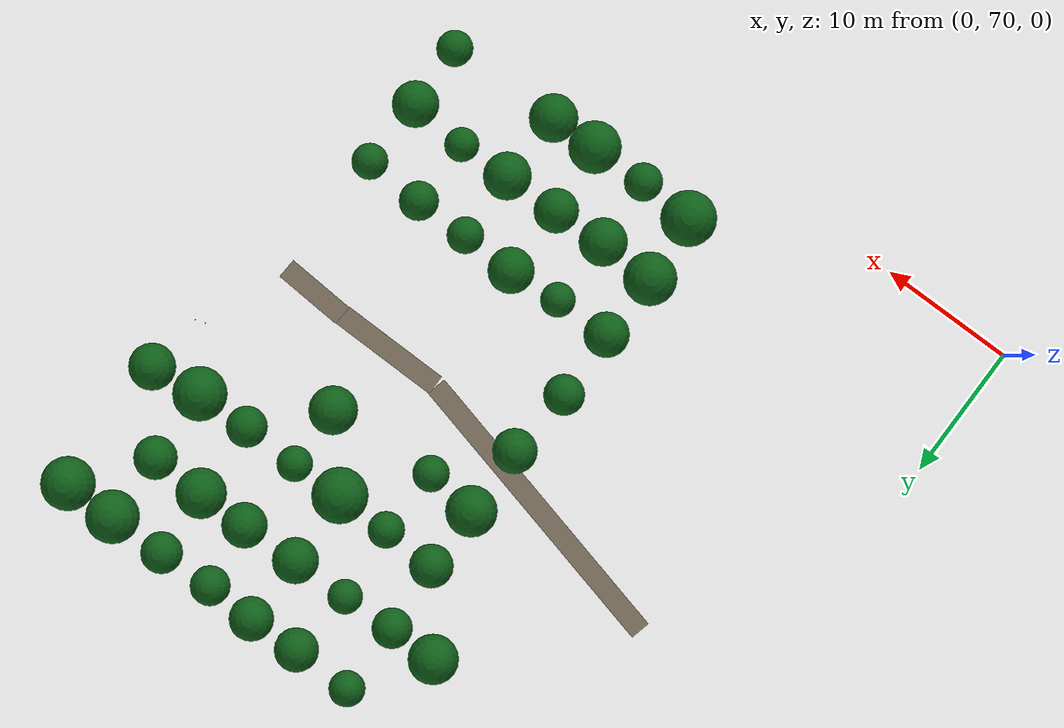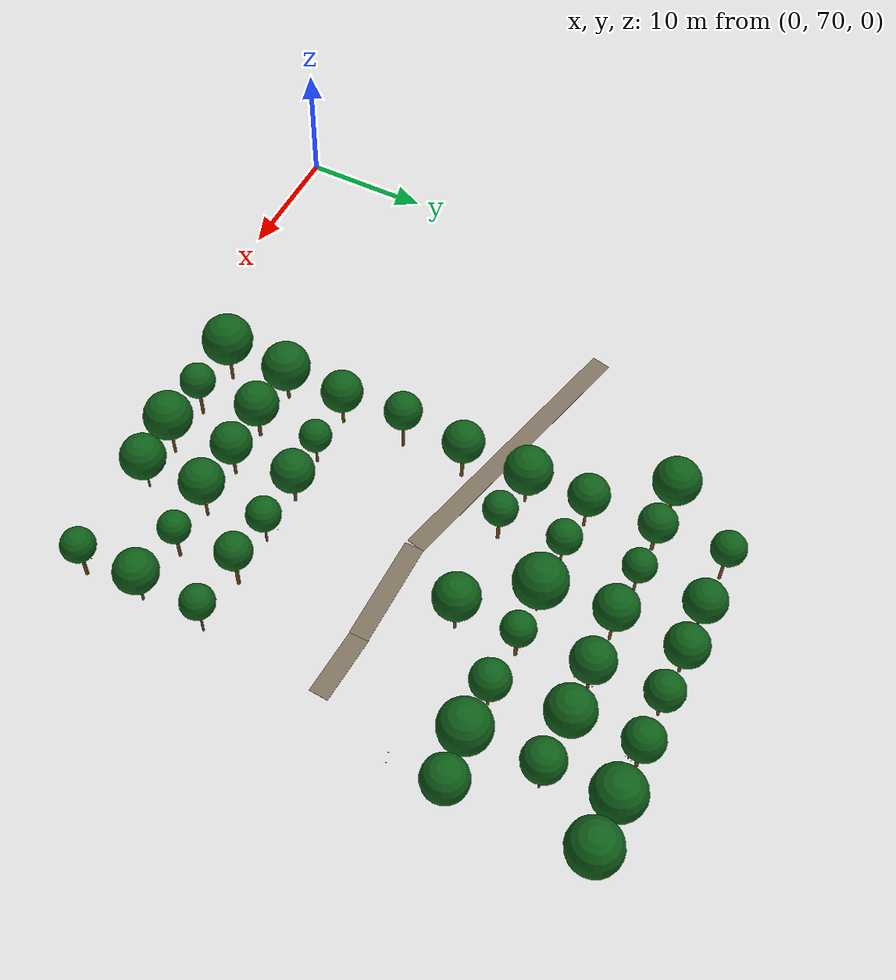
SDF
<sdf version="1.9">
 <world name="cheongsong_orchard">
  <model name="road_49">
   <static>true</static>
   <pose>42.1 95.3 0.02 0 0 3.0728</pose>
   <link name="link">
    <collision name="collision">
     <geometry><box><size>5.2 1.5 0.04</size></box></geometry>
     <surface><friction><ode><mu>0.9</mu><mu2>0.9</mu2></ode></friction></surface>
    </collision>
    <visual name="visual">
     <geometry><box><size>5.2 1.5 0.04</size></box></geometry>
     <material><ambient>0.4 0.35 0.28 1</ambient><diffuse>0.5 0.45 0.38 1</diffuse></material>
    </visual>
   </link>
  </model>
  <model name="road_50">
   <static>true</static>
   <pose>35.4 95.5 0.02 0 0 3.1268</pose>
   <link name="link">
    <collision name="collision">
     <geometry><box><size>8.3 1.5 0.04</size></box></geometry>
     <surface><friction><ode><mu>0.9</mu><mu2>0.9</mu2></ode></friction></surface>
    </collision>
    <visual name="visual">
     <geometry><box><size>8.3 1.5 0.04</size></box></geometry>
     <material><ambient>0.4 0.35 0.28 1</ambient><diffuse>0.5 0.45 0.38 1</diffuse></material>
    </visual>
   </link>
  </model>
  <model name="road_51">
   <static>true</static>
   <pose>20.2 98.3 0.02 0 0 2.9003</pose>
   <link name="link">
    <collision name="collision">
     <geometry><box><size>22.6 1.5 0.04</size></box></geometry>
     <surface><friction><ode><mu>0.9</mu><mu2>0.9</mu2></ode></friction></surface>
    </collision>
    <visual name="visual">
     <geometry><box><size>22.6 1.5 0.04</size></box></geometry>
     <material><ambient>0.4 0.35 0.28 1</ambient><diffuse>0.5 0.45 0.38 1</diffuse></material>
    </visual>
   </link>
  </model>
  <model name="apple_tree_2005">
   <static>true</static>
   <pose>23.87 75.83 0 0 0 0</pose>
   <link name="link">
    <collision name="trunk_col">
     <pose>0 0 1.38 0 0 0</pose>
     <geometry><cylinder><radius>0.125</radius><length>2.75</length></cylinder></geometry>
    </collision>
    <visual name="trunk_vis">
     <pose>0 0 1.38 0 0 0</pose>
     <geometry><cylinder><radius>0.125</radius><length>2.75</length></cylinder></geometry>
     <material><ambient>0.35 0.22 0.08 1</ambient><diffuse>0.45 0.30 0.12 1</diffuse></material>
    </visual>
    <collision name="canopy_col">
     <pose>0 0 4.72 0 0 0</pose>
     <geometry><sphere><radius>1.97</radius></sphere></geometry>
    </collision>
    <visual name="canopy_vis">
     <pose>0 0 4.72 0 0 0</pose>
     <geometry><sphere><radius>1.97</radius></sphere></geometry>
     <material><ambient>0.04 0.28 0.06 1</ambient><diffuse>0.06 0.38 0.10 1</diffuse></material>
    </visual>
   </link>
  </model>
  <model name="apple_tree_2006">
   <static>true</static>
   <pose>27.87 75.58 0 0 0 0</pose>
   <link name="link">
    <collision name="trunk_col">
     <pose>0 0 1.33 0 0 0</pose>
     <geometry><cylinder><radius>0.131</radius><length>2.67</length></cylinder></geometry>
    </collision>
    <visual name="trunk_vis">
     <pose>0 0 1.33 0 0 0</pose>
     <geometry><cylinder><radius>0.131</radius><length>2.67</length></cylinder></geometry>
     <material><ambient>0.35 0.22 0.08 1</ambient><diffuse>0.45 0.30 0.12 1</diffuse></material>
    </visual>
    <collision name="canopy_col">
     <pose>0 0 4.02 0 0 0</pose>
     <geometry><sphere><radius>1.36</radius></sphere></geometry>
    </collision>
    <visual name="canopy_vis">
     <pose>0 0 4.02 0 0 0</pose>
     <geometry><sphere><radius>1.36</radius></sphere></geometry>
     <material><ambient>0.04 0.28 0.06 1</ambient><diffuse>0.06 0.38 0.10 1</diffuse></material>
    </visual>
   </link>
  </model>
  <model name="apple_tree_2007">
   <static>true</static>
   <pose>31.99 75.68 0 0 0 0</pose>
   <link name="link">
    <collision name="trunk_col">
     <pose>0 0 1.36 0 0 0</pose>
     <geometry><cylinder><radius>0.110</radius><length>2.72</length></cylinder></geometry>
    </collision>
    <visual name="trunk_vis">
     <pose>0 0 1.36 0 0 0</pose>
     <geometry><cylinder><radius>0.110</radius><length>2.72</length></cylinder></geometry>
     <material><ambient>0.35 0.22 0.08 1</ambient><diffuse>0.45 0.30 0.12 1</diffuse></material>
    </visual>
    <collision name="canopy_col">
     <pose>0 0 4.58 0 0 0</pose>
     <geometry><sphere><radius>1.85</radius></sphere></geometry>
    </collision>
    <visual name="canopy_vis">
     <pose>0 0 4.58 0 0 0</pose>
     <geometry><sphere><radius>1.85</radius></sphere></geometry>
     <material><ambient>0.04 0.28 0.06 1</ambient><diffuse>0.06 0.38 0.10 1</diffuse></material>
    </visual>
   </link>
  </model>
  <model name="apple_tree_2008">
   <static>true</static>
   <pose>35.52 75.67 0 0 0 0</pose>
   <link name="link">
    <collision name="trunk_col">
     <pose>0 0 1.05 0 0 0</pose>
     <geometry><cylinder><radius>0.082</radius><length>2.09</length></cylinder></geometry>
    </collision>
    <visual name="trunk_vis">
     <pose>0 0 1.05 0 0 0</pose>
     <geometry><cylinder><radius>0.082</radius><length>2.09</length></cylinder></geometry>
     <material><ambient>0.35 0.22 0.08 1</ambient><diffuse>0.45 0.30 0.12 1</diffuse></material>
    </visual>
    <collision name="canopy_col">
     <pose>0 0 3.81 0 0 0</pose>
     <geometry><sphere><radius>1.72</radius></sphere></geometry>
    </collision>
    <visual name="canopy_vis">
     <pose>0 0 3.81 0 0 0</pose>
     <geometry><sphere><radius>1.72</radius></sphere></geometry>
     <material><ambient>0.04 0.28 0.06 1</ambient><diffuse>0.06 0.38 0.10 1</diffuse></material>
    </visual>
   </link>
  </model>
  <model name="apple_tree_2010">
   <static>true</static>
   <pose>43.89 75.84 0 0 0 0</pose>
   <link name="link">
    <collision name="trunk_col">
     <pose>0 0 1.26 0 0 0</pose>
     <geometry><cylinder><radius>0.133</radius><length>2.53</length></cylinder></geometry>
    </collision>
    <visual name="trunk_vis">
     <pose>0 0 1.26 0 0 0</pose>
     <geometry><cylinder><radius>0.133</radius><length>2.53</length></cylinder></geometry>
     <material><ambient>0.35 0.22 0.08 1</ambient><diffuse>0.45 0.30 0.12 1</diffuse></material>
    </visual>
    <collision name="canopy_col">
     <pose>0 0 3.82 0 0 0</pose>
     <geometry><sphere><radius>1.29</radius></sphere></geometry>
    </collision>
    <visual name="canopy_vis">
     <pose>0 0 3.82 0 0 0</pose>
     <geometry><sphere><radius>1.29</radius></sphere></geometry>
     <material><ambient>0.04 0.28 0.06 1</ambient><diffuse>0.06 0.38 0.10 1</diffuse></material>
    </visual>
   </link>
  </model>
  <model name="apple_tree_2060">
   <static>true</static>
   <pose>23.53 80.70 0 0 0 0</pose>
   <link name="link">
    <collision name="trunk_col">
     <pose>0 0 0.99 0 0 0</pose>
     <geometry><cylinder><radius>0.129</radius><length>1.98</length></cylinder></geometry>
    </collision>
    <visual name="trunk_vis">
     <pose>0 0 0.99 0 0 0</pose>
     <geometry><cylinder><radius>0.129</radius><length>1.98</length></cylinder></geometry>
     <material><ambient>0.35 0.22 0.08 1</ambient><diffuse>0.45 0.30 0.12 1</diffuse></material>
    </visual>
    <collision name="canopy_col">
     <pose>0 0 3.87 0 0 0</pose>
     <geometry><sphere><radius>1.89</radius></sphere></geometry>
    </collision>
    <visual name="canopy_vis">
     <pose>0 0 3.87 0 0 0</pose>
     <geometry><sphere><radius>1.89</radius></sphere></geometry>
     <material><ambient>0.04 0.28 0.06 1</ambient><diffuse>0.06 0.38 0.10 1</diffuse></material>
    </visual>
   </link>
  </model>
  <model name="apple_tree_2061">
   <static>true</static>
   <pose>27.66 80.57 0 0 0 0</pose>
   <link name="link">
    <collision name="trunk_col">
     <pose>0 0 1.09 0 0 0</pose>
     <geometry><cylinder><radius>0.138</radius><length>2.19</length></cylinder></geometry>
    </collision>
    <visual name="trunk_vis">
     <pose>0 0 1.09 0 0 0</pose>
     <geometry><cylinder><radius>0.138</radius><length>2.19</length></cylinder></geometry>
     <material><ambient>0.35 0.22 0.08 1</ambient><diffuse>0.45 0.30 0.12 1</diffuse></material>
    </visual>
    <collision name="canopy_col">
     <pose>0 0 3.89 0 0 0</pose>
     <geometry><sphere><radius>1.71</radius></sphere></geometry>
    </collision>
    <visual name="canopy_vis">
     <pose>0 0 3.89 0 0 0</pose>
     <geometry><sphere><radius>1.71</radius></sphere></geometry>
     <material><ambient>0.04 0.28 0.06 1</ambient><diffuse>0.06 0.38 0.10 1</diffuse></material>
    </visual>
   </link>
  </model>
  <model name="apple_tree_2062">
   <static>true</static>
   <pose>31.57 80.74 0 0 0 0</pose>
   <link name="link">
    <collision name="trunk_col">
     <pose>0 0 1.14 0 0 0</pose>
     <geometry><cylinder><radius>0.122</radius><length>2.28</length></cylinder></geometry>
    </collision>
    <visual name="trunk_vis">
     <pose>0 0 1.14 0 0 0</pose>
     <geometry><cylinder><radius>0.122</radius><length>2.28</length></cylinder></geometry>
     <material><ambient>0.35 0.22 0.08 1</ambient><diffuse>0.45 0.30 0.12 1</diffuse></material>
    </visual>
    <collision name="canopy_col">
     <pose>0 0 3.85 0 0 0</pose>
     <geometry><sphere><radius>1.58</radius></sphere></geometry>
    </collision>
    <visual name="canopy_vis">
     <pose>0 0 3.85 0 0 0</pose>
     <geometry><sphere><radius>1.58</radius></sphere></geometry>
     <material><ambient>0.04 0.28 0.06 1</ambient><diffuse>0.06 0.38 0.10 1</diffuse></material>
    </visual>
   </link>
  </model>
  <model name="apple_tree_2063">
   <static>true</static>
   <pose>35.70 80.84 0 0 0 0</pose>
   <link name="link">
    <collision name="trunk_col">
     <pose>0 0 1.32 0 0 0</pose>
     <geometry><cylinder><radius>0.112</radius><length>2.64</length></cylinder></geometry>
    </collision>
    <visual name="trunk_vis">
     <pose>0 0 1.32 0 0 0</pose>
     <geometry><cylinder><radius>0.112</radius><length>2.64</length></cylinder></geometry>
     <material><ambient>0.35 0.22 0.08 1</ambient><diffuse>0.45 0.30 0.12 1</diffuse></material>
    </visual>
    <collision name="canopy_col">
     <pose>0 0 4.33 0 0 0</pose>
     <geometry><sphere><radius>1.69</radius></sphere></geometry>
    </collision>
    <visual name="canopy_vis">
     <pose>0 0 4.33 0 0 0</pose>
     <geometry><sphere><radius>1.69</radius></sphere></geometry>
     <material><ambient>0.04 0.28 0.06 1</ambient><diffuse>0.06 0.38 0.10 1</diffuse></material>
    </visual>
   </link>
  </model>
  <model name="apple_tree_2064">
   <static>true</static>
   <pose>39.57 80.92 0 0 0 0</pose>
   <link name="link">
    <collision name="trunk_col">
     <pose>0 0 1.26 0 0 0</pose>
     <geometry><cylinder><radius>0.127</radius><length>2.53</length></cylinder></geometry>
    </collision>
    <visual name="trunk_vis">
     <pose>0 0 1.26 0 0 0</pose>
     <geometry><cylinder><radius>0.127</radius><length>2.53</length></cylinder></geometry>
     <material><ambient>0.35 0.22 0.08 1</ambient><diffuse>0.45 0.30 0.12 1</diffuse></material>
    </visual>
    <collision name="canopy_col">
     <pose>0 0 3.75 0 0 0</pose>
     <geometry><sphere><radius>1.22</radius></sphere></geometry>
    </collision>
    <visual name="canopy_vis">
     <pose>0 0 3.75 0 0 0</pose>
     <geometry><sphere><radius>1.22</radius></sphere></geometry>
     <material><ambient>0.04 0.28 0.06 1</ambient><diffuse>0.06 0.38 0.10 1</diffuse></material>
    </visual>
   </link>
  </model>
  <model name="apple_tree_2065">
   <static>true</static>
   <pose>43.81 80.55 0 0 0 0</pose>
   <link name="link">
    <collision name="trunk_col">
     <pose>0 0 1.06 0 0 0</pose>
     <geometry><cylinder><radius>0.099</radius><length>2.13</length></cylinder></geometry>
    </collision>
    <visual name="trunk_vis">
     <pose>0 0 1.06 0 0 0</pose>
     <geometry><cylinder><radius>0.099</radius><length>2.13</length></cylinder></geometry>
     <material><ambient>0.35 0.22 0.08 1</ambient><diffuse>0.45 0.30 0.12 1</diffuse></material>
    </visual>
    <collision name="canopy_col">
     <pose>0 0 3.78 0 0 0</pose>
     <geometry><sphere><radius>1.65</radius></sphere></geometry>
    </collision>
    <visual name="canopy_vis">
     <pose>0 0 3.78 0 0 0</pose>
     <geometry><sphere><radius>1.65</radius></sphere></geometry>
     <material><ambient>0.04 0.28 0.06 1</ambient><diffuse>0.06 0.38 0.10 1</diffuse></material>
    </visual>
   </link>
  </model>
  <model name="apple_tree_2117">
   <static>true</static>
   <pose>23.67 85.61 0 0 0 0</pose>
   <link name="link">
    <collision name="trunk_col">
     <pose>0 0 1.08 0 0 0</pose>
     <geometry><cylinder><radius>0.121</radius><length>2.16</length></cylinder></geometry>
    </collision>
    <visual name="trunk_vis">
     <pose>0 0 1.08 0 0 0</pose>
     <geometry><cylinder><radius>0.121</radius><length>2.16</length></cylinder></geometry>
     <material><ambient>0.35 0.22 0.08 1</ambient><diffuse>0.45 0.30 0.12 1</diffuse></material>
    </visual>
    <collision name="canopy_col">
     <pose>0 0 3.78 0 0 0</pose>
     <geometry><sphere><radius>1.61</radius></sphere></geometry>
    </collision>
    <visual name="canopy_vis">
     <pose>0 0 3.78 0 0 0</pose>
     <geometry><sphere><radius>1.61</radius></sphere></geometry>
     <material><ambient>0.04 0.28 0.06 1</ambient><diffuse>0.06 0.38 0.10 1</diffuse></material>
    </visual>
   </link>
  </model>
  <model name="apple_tree_2118">
   <static>true</static>
   <pose>27.83 85.63 0 0 0 0</pose>
   <link name="link">
    <collision name="trunk_col">
     <pose>0 0 0.99 0 0 0</pose>
     <geometry><cylinder><radius>0.107</radius><length>1.99</length></cylinder></geometry>
    </collision>
    <visual name="trunk_vis">
     <pose>0 0 0.99 0 0 0</pose>
     <geometry><cylinder><radius>0.107</radius><length>1.99</length></cylinder></geometry>
     <material><ambient>0.35 0.22 0.08 1</ambient><diffuse>0.45 0.30 0.12 1</diffuse></material>
    </visual>
    <collision name="canopy_col">
     <pose>0 0 3.22 0 0 0</pose>
     <geometry><sphere><radius>1.24</radius></sphere></geometry>
    </collision>
    <visual name="canopy_vis">
     <pose>0 0 3.22 0 0 0</pose>
     <geometry><sphere><radius>1.24</radius></sphere></geometry>
     <material><ambient>0.04 0.28 0.06 1</ambient><diffuse>0.06 0.38 0.10 1</diffuse></material>
    </visual>
   </link>
  </model>
  <model name="apple_tree_2119">
   <static>true</static>
   <pose>31.65 85.93 0 0 0 0</pose>
   <link name="link">
    <collision name="trunk_col">
     <pose>0 0 1.05 0 0 0</pose>
     <geometry><cylinder><radius>0.123</radius><length>2.10</length></cylinder></geometry>
    </collision>
    <visual name="trunk_vis">
     <pose>0 0 1.05 0 0 0</pose>
     <geometry><cylinder><radius>0.123</radius><length>2.10</length></cylinder></geometry>
     <material><ambient>0.35 0.22 0.08 1</ambient><diffuse>0.45 0.30 0.12 1</diffuse></material>
    </visual>
    <collision name="canopy_col">
     <pose>0 0 3.75 0 0 0</pose>
     <geometry><sphere><radius>1.64</radius></sphere></geometry>
    </collision>
    <visual name="canopy_vis">
     <pose>0 0 3.75 0 0 0</pose>
     <geometry><sphere><radius>1.64</radius></sphere></geometry>
     <material><ambient>0.04 0.28 0.06 1</ambient><diffuse>0.06 0.38 0.10 1</diffuse></material>
    </visual>
   </link>
  </model>
  <model name="apple_tree_2120">
   <static>true</static>
   <pose>35.66 85.83 0 0 0 0</pose>
   <link name="link">
    <collision name="trunk_col">
     <pose>0 0 1.10 0 0 0</pose>
     <geometry><cylinder><radius>0.090</radius><length>2.20</length></cylinder></geometry>
    </collision>
    <visual name="trunk_vis">
     <pose>0 0 1.10 0 0 0</pose>
     <geometry><cylinder><radius>0.090</radius><length>2.20</length></cylinder></geometry>
     <material><ambient>0.35 0.22 0.08 1</ambient><diffuse>0.45 0.30 0.12 1</diffuse></material>
    </visual>
    <collision name="canopy_col">
     <pose>0 0 3.51 0 0 0</pose>
     <geometry><sphere><radius>1.31</radius></sphere></geometry>
    </collision>
    <visual name="canopy_vis">
     <pose>0 0 3.51 0 0 0</pose>
     <geometry><sphere><radius>1.31</radius></sphere></geometry>
     <material><ambient>0.04 0.28 0.06 1</ambient><diffuse>0.06 0.38 0.10 1</diffuse></material>
    </visual>
   </link>
  </model>
  <model name="apple_tree_2121">
   <static>true</static>
   <pose>39.62 85.84 0 0 0 0</pose>
   <link name="link">
    <collision name="trunk_col">
     <pose>0 0 1.43 0 0 0</pose>
     <geometry><cylinder><radius>0.143</radius><length>2.87</length></cylinder></geometry>
    </collision>
    <visual name="trunk_vis">
     <pose>0 0 1.43 0 0 0</pose>
     <geometry><cylinder><radius>0.143</radius><length>2.87</length></cylinder></geometry>
     <material><ambient>0.35 0.22 0.08 1</ambient><diffuse>0.45 0.30 0.12 1</diffuse></material>
    </visual>
    <collision name="canopy_col">
     <pose>0 0 4.26 0 0 0</pose>
     <geometry><sphere><radius>1.39</radius></sphere></geometry>
    </collision>
    <visual name="canopy_vis">
     <pose>0 0 4.26 0 0 0</pose>
     <geometry><sphere><radius>1.39</radius></sphere></geometry>
     <material><ambient>0.04 0.28 0.06 1</ambient><diffuse>0.06 0.38 0.10 1</diffuse></material>
    </visual>
   </link>
  </model>
  <model name="apple_tree_2122">
   <static>true</static>
   <pose>44.00 85.63 0 0 0 0</pose>
   <link name="link">
    <collision name="trunk_col">
     <pose>0 0 1.32 0 0 0</pose>
     <geometry><cylinder><radius>0.085</radius><length>2.64</length></cylinder></geometry>
    </collision>
    <visual name="trunk_vis">
     <pose>0 0 1.32 0 0 0</pose>
     <geometry><cylinder><radius>0.085</radius><length>2.64</length></cylinder></geometry>
     <material><ambient>0.35 0.22 0.08 1</ambient><diffuse>0.45 0.30 0.12 1</diffuse></material>
    </visual>
    <collision name="canopy_col">
     <pose>0 0 3.93 0 0 0</pose>
     <geometry><sphere><radius>1.28</radius></sphere></geometry>
    </collision>
    <visual name="canopy_vis">
     <pose>0 0 3.93 0 0 0</pose>
     <geometry><sphere><radius>1.28</radius></sphere></geometry>
     <material><ambient>0.04 0.28 0.06 1</ambient><diffuse>0.06 0.38 0.10 1</diffuse></material>
    </visual>
   </link>
  </model>
  <model name="apple_tree_2173">
   <static>true</static>
   <pose>23.59 90.71 0 0 0 0</pose>
   <link name="link">
    <collision name="trunk_col">
     <pose>0 0 1.45 0 0 0</pose>
     <geometry><cylinder><radius>0.110</radius><length>2.89</length></cylinder></geometry>
    </collision>
    <visual name="trunk_vis">
     <pose>0 0 1.45 0 0 0</pose>
     <geometry><cylinder><radius>0.110</radius><length>2.89</length></cylinder></geometry>
     <material><ambient>0.35 0.22 0.08 1</ambient><diffuse>0.45 0.30 0.12 1</diffuse></material>
    </visual>
    <collision name="canopy_col">
     <pose>0 0 4.34 0 0 0</pose>
     <geometry><sphere><radius>1.45</radius></sphere></geometry>
    </collision>
    <visual name="canopy_vis">
     <pose>0 0 4.34 0 0 0</pose>
     <geometry><sphere><radius>1.45</radius></sphere></geometry>
     <material><ambient>0.04 0.28 0.06 1</ambient><diffuse>0.06 0.38 0.10 1</diffuse></material>
    </visual>
   </link>
  </model>
  <model name="apple_tree_2212">
   <static>true</static>
   <pose>24.04 95.86 0 0 0 0</pose>
   <link name="link">
    <collision name="trunk_col">
     <pose>0 0 1.33 0 0 0</pose>
     <geometry><cylinder><radius>0.139</radius><length>2.66</length></cylinder></geometry>
    </collision>
    <visual name="trunk_vis">
     <pose>0 0 1.33 0 0 0</pose>
     <geometry><cylinder><radius>0.139</radius><length>2.66</length></cylinder></geometry>
     <material><ambient>0.35 0.22 0.08 1</ambient><diffuse>0.45 0.30 0.12 1</diffuse></material>
    </visual>
    <collision name="canopy_col">
     <pose>0 0 4.26 0 0 0</pose>
     <geometry><sphere><radius>1.59</radius></sphere></geometry>
    </collision>
    <visual name="canopy_vis">
     <pose>0 0 4.26 0 0 0</pose>
     <geometry><sphere><radius>1.59</radius></sphere></geometry>
     <material><ambient>0.04 0.28 0.06 1</ambient><diffuse>0.06 0.38 0.10 1</diffuse></material>
    </visual>
   </link>
  </model>
  <model name="apple_tree_2247">
   <static>true</static>
   <pose>23.99 101.01 0 0 0 0</pose>
   <link name="link">
    <collision name="trunk_col">
     <pose>0 0 1.07 0 0 0</pose>
     <geometry><cylinder><radius>0.101</radius><length>2.14</length></cylinder></geometry>
    </collision>
    <visual name="trunk_vis">
     <pose>0 0 1.07 0 0 0</pose>
     <geometry><cylinder><radius>0.101</radius><length>2.14</length></cylinder></geometry>
     <material><ambient>0.35 0.22 0.08 1</ambient><diffuse>0.45 0.30 0.12 1</diffuse></material>
    </visual>
    <collision name="canopy_col">
     <pose>0 0 3.96 0 0 0</pose>
     <geometry><sphere><radius>1.82</radius></sphere></geometry>
    </collision>
    <visual name="canopy_vis">
     <pose>0 0 3.96 0 0 0</pose>
     <geometry><sphere><radius>1.82</radius></sphere></geometry>
     <material><ambient>0.04 0.28 0.06 1</ambient><diffuse>0.06 0.38 0.10 1</diffuse></material>
    </visual>
   </link>
  </model>
  <model name="apple_tree_2248">
   <static>true</static>
   <pose>27.79 100.57 0 0 0 0</pose>
   <link name="link">
    <collision name="trunk_col">
     <pose>0 0 1.26 0 0 0</pose>
     <geometry><cylinder><radius>0.136</radius><length>2.52</length></cylinder></geometry>
    </collision>
    <visual name="trunk_vis">
     <pose>0 0 1.26 0 0 0</pose>
     <geometry><cylinder><radius>0.136</radius><length>2.52</length></cylinder></geometry>
     <material><ambient>0.35 0.22 0.08 1</ambient><diffuse>0.45 0.30 0.12 1</diffuse></material>
    </visual>
    <collision name="canopy_col">
     <pose>0 0 3.82 0 0 0</pose>
     <geometry><sphere><radius>1.30</radius></sphere></geometry>
    </collision>
    <visual name="canopy_vis">
     <pose>0 0 3.82 0 0 0</pose>
     <geometry><sphere><radius>1.30</radius></sphere></geometry>
     <material><ambient>0.04 0.28 0.06 1</ambient><diffuse>0.06 0.38 0.10 1</diffuse></material>
    </visual>
   </link>
  </model>
  <model name="apple_tree_2249">
   <static>true</static>
   <pose>35.83 101.02 0 0 0 0</pose>
   <link name="link">
    <collision name="trunk_col">
     <pose>0 0 1.25 0 0 0</pose>
     <geometry><cylinder><radius>0.108</radius><length>2.50</length></cylinder></geometry>
    </collision>
    <visual name="trunk_vis">
     <pose>0 0 1.25 0 0 0</pose>
     <geometry><cylinder><radius>0.108</radius><length>2.50</length></cylinder></geometry>
     <material><ambient>0.35 0.22 0.08 1</ambient><diffuse>0.45 0.30 0.12 1</diffuse></material>
    </visual>
    <collision name="canopy_col">
     <pose>0 0 4.22 0 0 0</pose>
     <geometry><sphere><radius>1.72</radius></sphere></geometry>
    </collision>
    <visual name="canopy_vis">
     <pose>0 0 4.22 0 0 0</pose>
     <geometry><sphere><radius>1.72</radius></sphere></geometry>
     <material><ambient>0.04 0.28 0.06 1</ambient><diffuse>0.06 0.38 0.10 1</diffuse></material>
    </visual>
   </link>
  </model>
  <model name="apple_tree_2293">
   <static>true</static>
   <pose>23.98 105.71 0 0 0 0</pose>
   <link name="link">
    <collision name="trunk_col">
     <pose>0 0 1.22 0 0 0</pose>
     <geometry><cylinder><radius>0.108</radius><length>2.43</length></cylinder></geometry>
    </collision>
    <visual name="trunk_vis">
     <pose>0 0 1.22 0 0 0</pose>
     <geometry><cylinder><radius>0.108</radius><length>2.43</length></cylinder></geometry>
     <material><ambient>0.35 0.22 0.08 1</ambient><diffuse>0.45 0.30 0.12 1</diffuse></material>
    </visual>
    <collision name="canopy_col">
     <pose>0 0 3.98 0 0 0</pose>
     <geometry><sphere><radius>1.55</radius></sphere></geometry>
    </collision>
    <visual name="canopy_vis">
     <pose>0 0 3.98 0 0 0</pose>
     <geometry><sphere><radius>1.55</radius></sphere></geometry>
     <material><ambient>0.04 0.28 0.06 1</ambient><diffuse>0.06 0.38 0.10 1</diffuse></material>
    </visual>
   </link>
  </model>
  <model name="apple_tree_2294">
   <static>true</static>
   <pose>27.98 105.54 0 0 0 0</pose>
   <link name="link">
    <collision name="trunk_col">
     <pose>0 0 1.31 0 0 0</pose>
     <geometry><cylinder><radius>0.088</radius><length>2.63</length></cylinder></geometry>
    </collision>
    <visual name="trunk_vis">
     <pose>0 0 1.31 0 0 0</pose>
     <geometry><cylinder><radius>0.088</radius><length>2.63</length></cylinder></geometry>
     <material><ambient>0.35 0.22 0.08 1</ambient><diffuse>0.45 0.30 0.12 1</diffuse></material>
    </visual>
    <collision name="canopy_col">
     <pose>0 0 3.93 0 0 0</pose>
     <geometry><sphere><radius>1.30</radius></sphere></geometry>
    </collision>
    <visual name="canopy_vis">
     <pose>0 0 3.93 0 0 0</pose>
     <geometry><sphere><radius>1.30</radius></sphere></geometry>
     <material><ambient>0.04 0.28 0.06 1</ambient><diffuse>0.06 0.38 0.10 1</diffuse></material>
    </visual>
   </link>
  </model>
  <model name="apple_tree_2295">
   <static>true</static>
   <pose>31.98 105.52 0 0 0 0</pose>
   <link name="link">
    <collision name="trunk_col">
     <pose>0 0 1.00 0 0 0</pose>
     <geometry><cylinder><radius>0.094</radius><length>1.99</length></cylinder></geometry>
    </collision>
    <visual name="trunk_vis">
     <pose>0 0 1.00 0 0 0</pose>
     <geometry><cylinder><radius>0.094</radius><length>1.99</length></cylinder></geometry>
     <material><ambient>0.35 0.22 0.08 1</ambient><diffuse>0.45 0.30 0.12 1</diffuse></material>
    </visual>
    <collision name="canopy_col">
     <pose>0 0 3.98 0 0 0</pose>
     <geometry><sphere><radius>1.99</radius></sphere></geometry>
    </collision>
    <visual name="canopy_vis">
     <pose>0 0 3.98 0 0 0</pose>
     <geometry><sphere><radius>1.99</radius></sphere></geometry>
     <material><ambient>0.04 0.28 0.06 1</ambient><diffuse>0.06 0.38 0.10 1</diffuse></material>
    </visual>
   </link>
  </model>
  <model name="apple_tree_2296">
   <static>true</static>
   <pose>35.82 105.63 0 0 0 0</pose>
   <link name="link">
    <collision name="trunk_col">
     <pose>0 0 1.17 0 0 0</pose>
     <geometry><cylinder><radius>0.142</radius><length>2.33</length></cylinder></geometry>
    </collision>
    <visual name="trunk_vis">
     <pose>0 0 1.17 0 0 0</pose>
     <geometry><cylinder><radius>0.142</radius><length>2.33</length></cylinder></geometry>
     <material><ambient>0.35 0.22 0.08 1</ambient><diffuse>0.45 0.30 0.12 1</diffuse></material>
    </visual>
    <collision name="canopy_col">
     <pose>0 0 3.60 0 0 0</pose>
     <geometry><sphere><radius>1.27</radius></sphere></geometry>
    </collision>
    <visual name="canopy_vis">
     <pose>0 0 3.60 0 0 0</pose>
     <geometry><sphere><radius>1.27</radius></sphere></geometry>
     <material><ambient>0.04 0.28 0.06 1</ambient><diffuse>0.06 0.38 0.10 1</diffuse></material>
    </visual>
   </link>
  </model>
  <model name="apple_tree_2297">
   <static>true</static>
   <pose>40.03 105.53 0 0 0 0</pose>
   <link name="link">
    <collision name="trunk_col">
     <pose>0 0 1.05 0 0 0</pose>
     <geometry><cylinder><radius>0.112</radius><length>2.10</length></cylinder></geometry>
    </collision>
    <visual name="trunk_vis">
     <pose>0 0 1.05 0 0 0</pose>
     <geometry><cylinder><radius>0.112</radius><length>2.10</length></cylinder></geometry>
     <material><ambient>0.35 0.22 0.08 1</ambient><diffuse>0.45 0.30 0.12 1</diffuse></material>
    </visual>
    <collision name="canopy_col">
     <pose>0 0 3.56 0 0 0</pose>
     <geometry><sphere><radius>1.46</radius></sphere></geometry>
    </collision>
    <visual name="canopy_vis">
     <pose>0 0 3.56 0 0 0</pose>
     <geometry><sphere><radius>1.46</radius></sphere></geometry>
     <material><ambient>0.04 0.28 0.06 1</ambient><diffuse>0.06 0.38 0.10 1</diffuse></material>
    </visual>
   </link>
  </model>
  <model name="apple_tree_2298">
   <static>true</static>
   <pose>43.96 105.57 0 0 0 0</pose>
   <link name="link">
    <collision name="trunk_col">
     <pose>0 0 1.06 0 0 0</pose>
     <geometry><cylinder><radius>0.095</radius><length>2.12</length></cylinder></geometry>
    </collision>
    <visual name="trunk_vis">
     <pose>0 0 1.06 0 0 0</pose>
     <geometry><cylinder><radius>0.095</radius><length>2.12</length></cylinder></geometry>
     <material><ambient>0.35 0.22 0.08 1</ambient><diffuse>0.45 0.30 0.12 1</diffuse></material>
    </visual>
    <collision name="canopy_col">
     <pose>0 0 4.04 0 0 0</pose>
     <geometry><sphere><radius>1.92</radius></sphere></geometry>
    </collision>
    <visual name="canopy_vis">
     <pose>0 0 4.04 0 0 0</pose>
     <geometry><sphere><radius>1.92</radius></sphere></geometry>
     <material><ambient>0.04 0.28 0.06 1</ambient><diffuse>0.06 0.38 0.10 1</diffuse></material>
    </visual>
   </link>
  </model>
  <model name="apple_tree_2299">
   <static>true</static>
   <pose>47.72 106.00 0 0 0 0</pose>
   <link name="link">
    <collision name="trunk_col">
     <pose>0 0 1.22 0 0 0</pose>
     <geometry><cylinder><radius>0.093</radius><length>2.45</length></cylinder></geometry>
    </collision>
    <visual name="trunk_vis">
     <pose>0 0 1.22 0 0 0</pose>
     <geometry><cylinder><radius>0.093</radius><length>2.45</length></cylinder></geometry>
     <material><ambient>0.35 0.22 0.08 1</ambient><diffuse>0.45 0.30 0.12 1</diffuse></material>
    </visual>
    <collision name="canopy_col">
     <pose>0 0 4.10 0 0 0</pose>
     <geometry><sphere><radius>1.66</radius></sphere></geometry>
    </collision>
    <visual name="canopy_vis">
     <pose>0 0 4.10 0 0 0</pose>
     <geometry><sphere><radius>1.66</radius></sphere></geometry>
     <material><ambient>0.04 0.28 0.06 1</ambient><diffuse>0.06 0.38 0.10 1</diffuse></material>
    </visual>
   </link>
  </model>
  <model name="apple_tree_2336">
   <static>true</static>
   <pose>20.05 110.84 0 0 0 0</pose>
   <link name="link">
    <collision name="trunk_col">
     <pose>0 0 1.12 0 0 0</pose>
     <geometry><cylinder><radius>0.121</radius><length>2.25</length></cylinder></geometry>
    </collision>
    <visual name="trunk_vis">
     <pose>0 0 1.12 0 0 0</pose>
     <geometry><cylinder><radius>0.121</radius><length>2.25</length></cylinder></geometry>
     <material><ambient>0.35 0.22 0.08 1</ambient><diffuse>0.45 0.30 0.12 1</diffuse></material>
    </visual>
    <collision name="canopy_col">
     <pose>0 0 4.03 0 0 0</pose>
     <geometry><sphere><radius>1.78</radius></sphere></geometry>
    </collision>
    <visual name="canopy_vis">
     <pose>0 0 4.03 0 0 0</pose>
     <geometry><sphere><radius>1.78</radius></sphere></geometry>
     <material><ambient>0.04 0.28 0.06 1</ambient><diffuse>0.06 0.38 0.10 1</diffuse></material>
    </visual>
   </link>
  </model>
  <model name="apple_tree_2337">
   <static>true</static>
   <pose>23.61 110.86 0 0 0 0</pose>
   <link name="link">
    <collision name="trunk_col">
     <pose>0 0 1.00 0 0 0</pose>
     <geometry><cylinder><radius>0.140</radius><length>2.00</length></cylinder></geometry>
    </collision>
    <visual name="trunk_vis">
     <pose>0 0 1.00 0 0 0</pose>
     <geometry><cylinder><radius>0.140</radius><length>2.00</length></cylinder></geometry>
     <material><ambient>0.35 0.22 0.08 1</ambient><diffuse>0.45 0.30 0.12 1</diffuse></material>
    </visual>
    <collision name="canopy_col">
     <pose>0 0 3.43 0 0 0</pose>
     <geometry><sphere><radius>1.44</radius></sphere></geometry>
    </collision>
    <visual name="canopy_vis">
     <pose>0 0 3.43 0 0 0</pose>
     <geometry><sphere><radius>1.44</radius></sphere></geometry>
     <material><ambient>0.04 0.28 0.06 1</ambient><diffuse>0.06 0.38 0.10 1</diffuse></material>
    </visual>
   </link>
  </model>
  <model name="apple_tree_2338">
   <static>true</static>
   <pose>27.54 111.00 0 0 0 0</pose>
   <link name="link">
    <collision name="trunk_col">
     <pose>0 0 1.19 0 0 0</pose>
     <geometry><cylinder><radius>0.100</radius><length>2.37</length></cylinder></geometry>
    </collision>
    <visual name="trunk_vis">
     <pose>0 0 1.19 0 0 0</pose>
     <geometry><cylinder><radius>0.100</radius><length>2.37</length></cylinder></geometry>
     <material><ambient>0.35 0.22 0.08 1</ambient><diffuse>0.45 0.30 0.12 1</diffuse></material>
    </visual>
    <collision name="canopy_col">
     <pose>0 0 3.61 0 0 0</pose>
     <geometry><sphere><radius>1.24</radius></sphere></geometry>
    </collision>
    <visual name="canopy_vis">
     <pose>0 0 3.61 0 0 0</pose>
     <geometry><sphere><radius>1.24</radius></sphere></geometry>
     <material><ambient>0.04 0.28 0.06 1</ambient><diffuse>0.06 0.38 0.10 1</diffuse></material>
    </visual>
   </link>
  </model>
  <model name="apple_tree_2339">
   <static>true</static>
   <pose>31.78 110.92 0 0 0 0</pose>
   <link name="link">
    <collision name="trunk_col">
     <pose>0 0 1.38 0 0 0</pose>
     <geometry><cylinder><radius>0.108</radius><length>2.76</length></cylinder></geometry>
    </collision>
    <visual name="trunk_vis">
     <pose>0 0 1.38 0 0 0</pose>
     <geometry><cylinder><radius>0.108</radius><length>2.76</length></cylinder></geometry>
     <material><ambient>0.35 0.22 0.08 1</ambient><diffuse>0.45 0.30 0.12 1</diffuse></material>
    </visual>
    <collision name="canopy_col">
     <pose>0 0 4.39 0 0 0</pose>
     <geometry><sphere><radius>1.63</radius></sphere></geometry>
    </collision>
    <visual name="canopy_vis">
     <pose>0 0 4.39 0 0 0</pose>
     <geometry><sphere><radius>1.63</radius></sphere></geometry>
     <material><ambient>0.04 0.28 0.06 1</ambient><diffuse>0.06 0.38 0.10 1</diffuse></material>
    </visual>
   </link>
  </model>
  <model name="apple_tree_2340">
   <static>true</static>
   <pose>36.07 111.05 0 0 0 0</pose>
   <link name="link">
    <collision name="trunk_col">
     <pose>0 0 1.34 0 0 0</pose>
     <geometry><cylinder><radius>0.115</radius><length>2.67</length></cylinder></geometry>
    </collision>
    <visual name="trunk_vis">
     <pose>0 0 1.34 0 0 0</pose>
     <geometry><cylinder><radius>0.115</radius><length>2.67</length></cylinder></geometry>
     <material><ambient>0.35 0.22 0.08 1</ambient><diffuse>0.45 0.30 0.12 1</diffuse></material>
    </visual>
    <collision name="canopy_col">
     <pose>0 0 4.28 0 0 0</pose>
     <geometry><sphere><radius>1.61</radius></sphere></geometry>
    </collision>
    <visual name="canopy_vis">
     <pose>0 0 4.28 0 0 0</pose>
     <geometry><sphere><radius>1.61</radius></sphere></geometry>
     <material><ambient>0.04 0.28 0.06 1</ambient><diffuse>0.06 0.38 0.10 1</diffuse></material>
    </visual>
   </link>
  </model>
  <model name="apple_tree_2341">
   <static>true</static>
   <pose>39.82 111.09 0 0 0 0</pose>
   <link name="link">
    <collision name="trunk_col">
     <pose>0 0 1.06 0 0 0</pose>
     <geometry><cylinder><radius>0.118</radius><length>2.12</length></cylinder></geometry>
    </collision>
    <visual name="trunk_vis">
     <pose>0 0 1.06 0 0 0</pose>
     <geometry><cylinder><radius>0.118</radius><length>2.12</length></cylinder></geometry>
     <material><ambient>0.35 0.22 0.08 1</ambient><diffuse>0.45 0.30 0.12 1</diffuse></material>
    </visual>
    <collision name="canopy_col">
     <pose>0 0 3.90 0 0 0</pose>
     <geometry><sphere><radius>1.79</radius></sphere></geometry>
    </collision>
    <visual name="canopy_vis">
     <pose>0 0 3.90 0 0 0</pose>
     <geometry><sphere><radius>1.79</radius></sphere></geometry>
     <material><ambient>0.04 0.28 0.06 1</ambient><diffuse>0.06 0.38 0.10 1</diffuse></material>
    </visual>
   </link>
  </model>
  <model name="apple_tree_2342">
   <static>true</static>
   <pose>43.81 110.95 0 0 0 0</pose>
   <link name="link">
    <collision name="trunk_col">
     <pose>0 0 1.27 0 0 0</pose>
     <geometry><cylinder><radius>0.096</radius><length>2.54</length></cylinder></geometry>
    </collision>
    <visual name="trunk_vis">
     <pose>0 0 1.27 0 0 0</pose>
     <geometry><cylinder><radius>0.096</radius><length>2.54</length></cylinder></geometry>
     <material><ambient>0.35 0.22 0.08 1</ambient><diffuse>0.45 0.30 0.12 1</diffuse></material>
    </visual>
    <collision name="canopy_col">
     <pose>0 0 4.08 0 0 0</pose>
     <geometry><sphere><radius>1.54</radius></sphere></geometry>
    </collision>
    <visual name="canopy_vis">
     <pose>0 0 4.08 0 0 0</pose>
     <geometry><sphere><radius>1.54</radius></sphere></geometry>
     <material><ambient>0.04 0.28 0.06 1</ambient><diffuse>0.06 0.38 0.10 1</diffuse></material>
    </visual>
   </link>
  </model>
  <model name="apple_tree_2376">
   <static>true</static>
   <pose>23.67 116.02 0 0 0 0</pose>
   <link name="link">
    <collision name="trunk_col">
     <pose>0 0 1.31 0 0 0</pose>
     <geometry><cylinder><radius>0.125</radius><length>2.63</length></cylinder></geometry>
    </collision>
    <visual name="trunk_vis">
     <pose>0 0 1.31 0 0 0</pose>
     <geometry><cylinder><radius>0.125</radius><length>2.63</length></cylinder></geometry>
     <material><ambient>0.35 0.22 0.08 1</ambient><diffuse>0.45 0.30 0.12 1</diffuse></material>
    </visual>
    <collision name="canopy_col">
     <pose>0 0 3.92 0 0 0</pose>
     <geometry><sphere><radius>1.29</radius></sphere></geometry>
    </collision>
    <visual name="canopy_vis">
     <pose>0 0 3.92 0 0 0</pose>
     <geometry><sphere><radius>1.29</radius></sphere></geometry>
     <material><ambient>0.04 0.28 0.06 1</ambient><diffuse>0.06 0.38 0.10 1</diffuse></material>
    </visual>
   </link>
  </model>
  <model name="apple_tree_2377">
   <static>true</static>
   <pose>28.08 115.99 0 0 0 0</pose>
   <link name="link">
    <collision name="trunk_col">
     <pose>0 0 0.99 0 0 0</pose>
     <geometry><cylinder><radius>0.105</radius><length>1.98</length></cylinder></geometry>
    </collision>
    <visual name="trunk_vis">
     <pose>0 0 0.99 0 0 0</pose>
     <geometry><cylinder><radius>0.105</radius><length>1.98</length></cylinder></geometry>
     <material><ambient>0.35 0.22 0.08 1</ambient><diffuse>0.45 0.30 0.12 1</diffuse></material>
    </visual>
    <collision name="canopy_col">
     <pose>0 0 3.55 0 0 0</pose>
     <geometry><sphere><radius>1.57</radius></sphere></geometry>
    </collision>
    <visual name="canopy_vis">
     <pose>0 0 3.55 0 0 0</pose>
     <geometry><sphere><radius>1.57</radius></sphere></geometry>
     <material><ambient>0.04 0.28 0.06 1</ambient><diffuse>0.06 0.38 0.10 1</diffuse></material>
    </visual>
   </link>
  </model>
  <model name="apple_tree_2378">
   <static>true</static>
   <pose>31.88 116.08 0 0 0 0</pose>
   <link name="link">
    <collision name="trunk_col">
     <pose>0 0 1.03 0 0 0</pose>
     <geometry><cylinder><radius>0.121</radius><length>2.07</length></cylinder></geometry>
    </collision>
    <visual name="trunk_vis">
     <pose>0 0 1.03 0 0 0</pose>
     <geometry><cylinder><radius>0.121</radius><length>2.07</length></cylinder></geometry>
     <material><ambient>0.35 0.22 0.08 1</ambient><diffuse>0.45 0.30 0.12 1</diffuse></material>
    </visual>
    <collision name="canopy_col">
     <pose>0 0 3.65 0 0 0</pose>
     <geometry><sphere><radius>1.58</radius></sphere></geometry>
    </collision>
    <visual name="canopy_vis">
     <pose>0 0 3.65 0 0 0</pose>
     <geometry><sphere><radius>1.58</radius></sphere></geometry>
     <material><ambient>0.04 0.28 0.06 1</ambient><diffuse>0.06 0.38 0.10 1</diffuse></material>
    </visual>
   </link>
  </model>
  <model name="apple_tree_2379">
   <static>true</static>
   <pose>35.55 115.95 0 0 0 0</pose>
   <link name="link">
    <collision name="trunk_col">
     <pose>0 0 1.04 0 0 0</pose>
     <geometry><cylinder><radius>0.113</radius><length>2.08</length></cylinder></geometry>
    </collision>
    <visual name="trunk_vis">
     <pose>0 0 1.04 0 0 0</pose>
     <geometry><cylinder><radius>0.113</radius><length>2.08</length></cylinder></geometry>
     <material><ambient>0.35 0.22 0.08 1</ambient><diffuse>0.45 0.30 0.12 1</diffuse></material>
    </visual>
    <collision name="canopy_col">
     <pose>0 0 3.50 0 0 0</pose>
     <geometry><sphere><radius>1.42</radius></sphere></geometry>
    </collision>
    <visual name="canopy_vis">
     <pose>0 0 3.50 0 0 0</pose>
     <geometry><sphere><radius>1.42</radius></sphere></geometry>
     <material><ambient>0.04 0.28 0.06 1</ambient><diffuse>0.06 0.38 0.10 1</diffuse></material>
    </visual>
   </link>
  </model>
  <model name="apple_tree_2380">
   <static>true</static>
   <pose>39.59 116.02 0 0 0 0</pose>
   <link name="link">
    <collision name="trunk_col">
     <pose>0 0 1.23 0 0 0</pose>
     <geometry><cylinder><radius>0.140</radius><length>2.46</length></cylinder></geometry>
    </collision>
    <visual name="trunk_vis">
     <pose>0 0 1.23 0 0 0</pose>
     <geometry><cylinder><radius>0.140</radius><length>2.46</length></cylinder></geometry>
     <material><ambient>0.35 0.22 0.08 1</ambient><diffuse>0.45 0.30 0.12 1</diffuse></material>
    </visual>
    <collision name="canopy_col">
     <pose>0 0 3.94 0 0 0</pose>
     <geometry><sphere><radius>1.48</radius></sphere></geometry>
    </collision>
    <visual name="canopy_vis">
     <pose>0 0 3.94 0 0 0</pose>
     <geometry><sphere><radius>1.48</radius></sphere></geometry>
     <material><ambient>0.04 0.28 0.06 1</ambient><diffuse>0.06 0.38 0.10 1</diffuse></material>
    </visual>
   </link>
  </model>
  <model name="apple_tree_2381">
   <static>true</static>
   <pose>43.76 115.96 0 0 0 0</pose>
   <link name="link">
    <collision name="trunk_col">
     <pose>0 0 1.24 0 0 0</pose>
     <geometry><cylinder><radius>0.100</radius><length>2.48</length></cylinder></geometry>
    </collision>
    <visual name="trunk_vis">
     <pose>0 0 1.24 0 0 0</pose>
     <geometry><cylinder><radius>0.100</radius><length>2.48</length></cylinder></geometry>
     <material><ambient>0.35 0.22 0.08 1</ambient><diffuse>0.45 0.30 0.12 1</diffuse></material>
    </visual>
    <collision name="canopy_col">
     <pose>0 0 4.37 0 0 0</pose>
     <geometry><sphere><radius>1.89</radius></sphere></geometry>
    </collision>
    <visual name="canopy_vis">
     <pose>0 0 4.37 0 0 0</pose>
     <geometry><sphere><radius>1.89</radius></sphere></geometry>
     <material><ambient>0.04 0.28 0.06 1</ambient><diffuse>0.06 0.38 0.10 1</diffuse></material>
    </visual>
   </link>
  </model>
  <model name="apple_tree_2382">
   <static>true</static>
   <pose>47.59 115.93 0 0 0 0</pose>
   <link name="link">
    <collision name="trunk_col">
     <pose>0 0 1.22 0 0 0</pose>
     <geometry><cylinder><radius>0.149</radius><length>2.45</length></cylinder></geometry>
    </collision>
    <visual name="trunk_vis">
     <pose>0 0 1.22 0 0 0</pose>
     <geometry><cylinder><radius>0.149</radius><length>2.45</length></cylinder></geometry>
     <material><ambient>0.35 0.22 0.08 1</ambient><diffuse>0.45 0.30 0.12 1</diffuse></material>
    </visual>
    <collision name="canopy_col">
     <pose>0 0 4.36 0 0 0</pose>
     <geometry><sphere><radius>1.91</radius></sphere></geometry>
    </collision>
    <visual name="canopy_vis">
     <pose>0 0 4.36 0 0 0</pose>
     <geometry><sphere><radius>1.91</radius></sphere></geometry>
     <material><ambient>0.04 0.28 0.06 1</ambient><diffuse>0.06 0.38 0.10 1</diffuse></material>
    </visual>
   </link>
  </model>
  <model name="apple_2010_0">
   <static>true</static>
   <pose>43.46 75.97 2.56 0 0 0</pose>
   <link name="link">
    <visual name="visual">
     <geometry><sphere><radius>0.04</radius></sphere></geometry>
     <material><ambient>0.7 0.05 0.02 1</ambient><diffuse>0.9 0.10 0.05 1</diffuse></material>
    </visual>
   </link>
  </model>
  <model name="apple_2010_1">
   <static>true</static>
   <pose>43.73 76.55 2.31 0 0 0</pose>
   <link name="link">
    <visual name="visual">
     <geometry><sphere><radius>0.04</radius></sphere></geometry>
     <material><ambient>0.7 0.05 0.02 1</ambient><diffuse>0.9 0.10 0.05 1</diffuse></material>
    </visual>
   </link>
  </model>
  <model name="apple_2010_2">
   <static>true</static>
   <pose>44.22 75.88 2.31 0 0 0</pose>
   <link name="link">
    <visual name="visual">
     <geometry><sphere><radius>0.04</radius></sphere></geometry>
     <material><ambient>0.7 0.05 0.02 1</ambient><diffuse>0.9 0.10 0.05 1</diffuse></material>
    </visual>
   </link>
  </model>
  <model name="apple_2010_3">
   <static>true</static>
   <pose>43.49 75.90 2.76 0 0 0</pose>
   <link name="link">
    <visual name="visual">
     <geometry><sphere><radius>0.04</radius></sphere></geometry>
     <material><ambient>0.7 0.05 0.02 1</ambient><diffuse>0.9 0.10 0.05 1</diffuse></material>
    </visual>
   </link>
  </model>
  <model name="apple_2060_0">
   <static>true</static>
   <pose>23.55 79.47 1.78 0 0 0</pose>
   <link name="link">
    <visual name="visual">
     <geometry><sphere><radius>0.04</radius></sphere></geometry>
     <material><ambient>0.7 0.05 0.02 1</ambient><diffuse>0.9 0.10 0.05 1</diffuse></material>
    </visual>
   </link>
  </model>
  <model name="apple_2060_1">
   <static>true</static>
   <pose>22.36 79.99 2.48 0 0 0</pose>
   <link name="link">
    <visual name="visual">
     <geometry><sphere><radius>0.04</radius></sphere></geometry>
     <material><ambient>0.7 0.05 0.02 1</ambient><diffuse>0.9 0.10 0.05 1</diffuse></material>
    </visual>
   </link>
  </model>
  <model name="apple_2060_2">
   <static>true</static>
   <pose>22.93 79.32 1.73 0 0 0</pose>
   <link name="link">
    <visual name="visual">
     <geometry><sphere><radius>0.04</radius></sphere></geometry>
     <material><ambient>0.7 0.05 0.02 1</ambient><diffuse>0.9 0.10 0.05 1</diffuse></material>
    </visual>
   </link>
  </model>
  <model name="apple_2060_3">
   <static>true</static>
   <pose>24.72 80.42 1.34 0 0 0</pose>
   <link name="link">
    <visual name="visual">
     <geometry><sphere><radius>0.04</radius></sphere></geometry>
     <material><ambient>0.7 0.05 0.02 1</ambient><diffuse>0.9 0.10 0.05 1</diffuse></material>
    </visual>
   </link>
  </model>
  <model name="apple_2120_0">
   <static>true</static>
   <pose>35.48 86.80 1.88 0 0 0</pose>
   <link name="link">
    <visual name="visual">
     <geometry><sphere><radius>0.04</radius></sphere></geometry>
     <material><ambient>0.7 0.05 0.02 1</ambient><diffuse>0.9 0.10 0.05 1</diffuse></material>
    </visual>
   </link>
  </model>
  <model name="apple_2120_1">
   <static>true</static>
   <pose>35.40 86.47 1.89 0 0 0</pose>
   <link name="link">
    <visual name="visual">
     <geometry><sphere><radius>0.04</radius></sphere></geometry>
     <material><ambient>0.7 0.05 0.02 1</ambient><diffuse>0.9 0.10 0.05 1</diffuse></material>
    </visual>
   </link>
  </model>
  <model name="apple_2120_2">
   <static>true</static>
   <pose>35.94 86.01 2.28 0 0 0</pose>
   <link name="link">
    <visual name="visual">
     <geometry><sphere><radius>0.04</radius></sphere></geometry>
     <material><ambient>0.7 0.05 0.02 1</ambient><diffuse>0.9 0.10 0.05 1</diffuse></material>
    </visual>
   </link>
  </model>
  <model name="apple_2120_3">
   <static>true</static>
   <pose>35.88 84.83 2.54 0 0 0</pose>
   <link name="link">
    <visual name="visual">
     <geometry><sphere><radius>0.04</radius></sphere></geometry>
     <material><ambient>0.7 0.05 0.02 1</ambient><diffuse>0.9 0.10 0.05 1</diffuse></material>
    </visual>
   </link>
  </model>
  <model name="apple_2250_1">
   <static>true</static>
   <pose>47.53 101.79 1.77 0 0 0</pose>
   <link name="link">
    <visual name="visual">
     <geometry><sphere><radius>0.04</radius></sphere></geometry>
     <material><ambient>0.7 0.05 0.02 1</ambient><diffuse>0.9 0.10 0.05 1</diffuse></material>
    </visual>
   </link>
  </model>
  <model name="apple_2250_3">
   <static>true</static>
   <pose>46.84 101.57 1.70 0 0 0</pose>
   <link name="link">
    <visual name="visual">
     <geometry><sphere><radius>0.04</radius></sphere></geometry>
     <material><ambient>0.7 0.05 0.02 1</ambient><diffuse>0.9 0.10 0.05 1</diffuse></material>
    </visual>
   </link>
  </model>
  <model name="apple_2340_0">
   <static>true</static>
   <pose>37.07 111.57 2.75 0 0 0</pose>
   <link name="link">
    <visual name="visual">
     <geometry><sphere><radius>0.04</radius></sphere></geometry>
     <material><ambient>0.7 0.05 0.02 1</ambient><diffuse>0.9 0.10 0.05 1</diffuse></material>
    </visual>
   </link>
  </model>
  <model name="apple_2340_1">
   <static>true</static>
   <pose>36.92 110.23 2.69 0 0 0</pose>
   <link name="link">
    <visual name="visual">
     <geometry><sphere><radius>0.04</radius></sphere></geometry>
     <material><ambient>0.7 0.05 0.02 1</ambient><diffuse>0.9 0.10 0.05 1</diffuse></material>
    </visual>
   </link>
  </model>
  <model name="apple_2340_2">
   <static>true</static>
   <pose>36.25 110.70 2.25 0 0 0</pose>
   <link name="link">
    <visual name="visual">
     <geometry><sphere><radius>0.04</radius></sphere></geometry>
     <material><ambient>0.7 0.05 0.02 1</ambient><diffuse>0.9 0.10 0.05 1</diffuse></material>
    </visual>
   </link>
  </model>
  <model name="apple_2380_0">
   <static>true</static>
   <pose>40.46 115.30 2.45 0 0 0</pose>
   <link name="link">
    <visual name="visual">
     <geometry><sphere><radius>0.04</radius></sphere></geometry>
     <material><ambient>0.7 0.05 0.02 1</ambient><diffuse>0.9 0.10 0.05 1</diffuse></material>
    </visual>
   </link>
  </model>
  <model name="apple_2380_1">
   <static>true</static>
   <pose>40.43 115.50 2.30 0 0 0</pose>
   <link name="link">
    <visual name="visual">
     <geometry><sphere><radius>0.04</radius></sphere></geometry>
     <material><ambient>0.7 0.05 0.02 1</ambient><diffuse>0.9 0.10 0.05 1</diffuse></material>
    </visual>
   </link>
  </model>
  <model name="apple_2380_2">
   <static>true</static>
   <pose>40.61 115.72 2.48 0 0 0</pose>
   <link name="link">
    <visual name="visual">
     <geometry><sphere><radius>0.04</radius></sphere></geometry>
     <material><ambient>0.7 0.05 0.02 1</ambient><diffuse>0.9 0.10 0.05 1</diffuse></material>
    </visual>
   </link>
  </model>
 </world>
</sdf>
